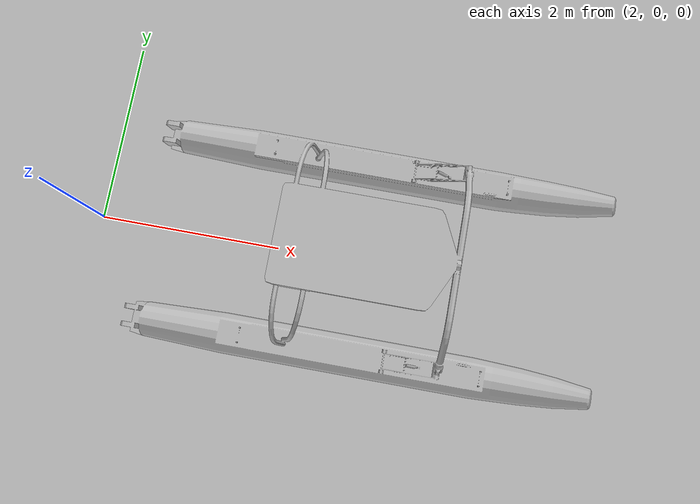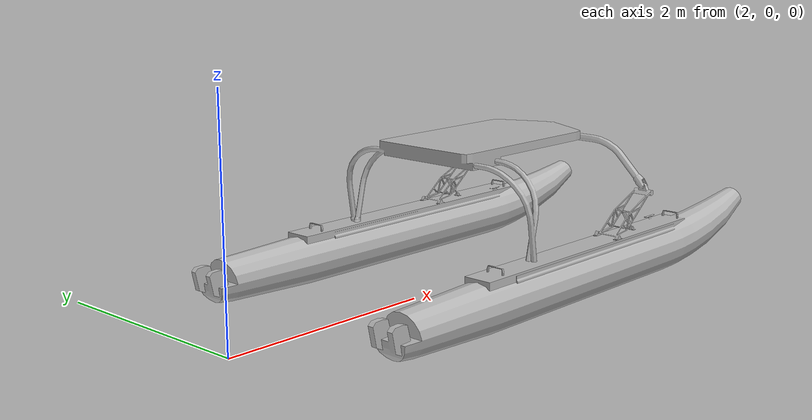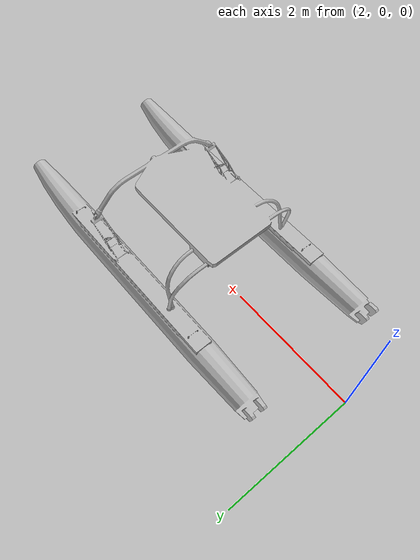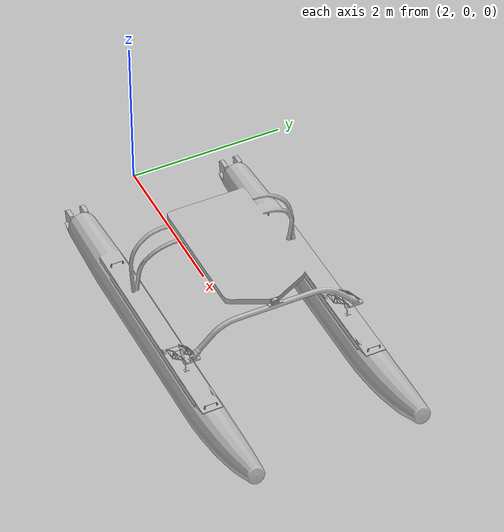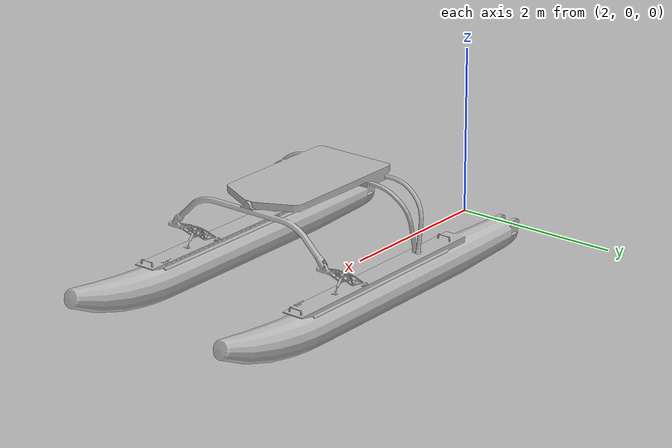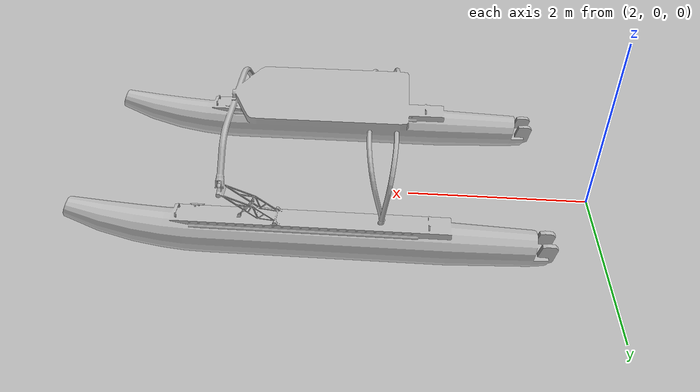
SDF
<?xml version="1.0" ?>
<sdf version="1.6">
  <world name="perf_waves">

    <!-- real_time_factor 0: run as fast as possible, no wall-clock throttle.
         Patched at runtime by perf_check.py via the speedup argument. -->
    <physics type="ode">
      <real_time_factor>0</real_time_factor>
      <real_time_update_rate>1000</real_time_update_rate>
    </physics>

    <plugin filename="gz-sim-physics-system"
            name="gz::sim::systems::Physics">
    </plugin>
    <plugin filename="gz-sim-scene-broadcaster-system"
            name="gz::sim::systems::SceneBroadcaster">
    </plugin>
    <plugin filename="gz-sim-user-commands-system"
            name="gz::sim::systems::UserCommands">
    </plugin>
    <plugin filename="gz-sim-wind-effects-system"
            name="gz::sim::systems::WindEffects">
      <force_approximation_scaling_factor>1.0</force_approximation_scaling_factor>
      <horizontal>
        <magnitude>
          <time_for_rise>10</time_for_rise>
          <sin>
            <amplitude_percent>0.05</amplitude_percent>
            <period>60</period>
          </sin>
          <noise type="gaussian">
            <mean>0</mean>
            <stddev>0.0002</stddev>
          </noise>
        </magnitude>
        <direction>
          <time_for_rise>30</time_for_rise>
          <sin>
            <amplitude>5</amplitude>
            <period>20</period>
          </sin>
          <noise type="gaussian">
            <mean>0</mean>
            <stddev>0.03</stddev>
          </noise>
        </direction>
      </horizontal>
      <vertical>
        <noise type="gaussian">
          <mean>0</mean>
          <stddev>0.03</stddev>
        </noise>
      </vertical>
    </plugin>

    <scene>
      <ambient>1.0 1.0 1.0</ambient>
      <background>0.8 0.8 0.8</background>
      <sky></sky>
    </scene>

    <light type="directional" name="sun">
      <cast_shadows>true</cast_shadows>
      <pose>0 0 10 0 0 0</pose>
      <diffuse>0.8 0.8 0.8 1</diffuse>
      <specular>0.6 0.6 0.6 1</specular>
      <direction>-0.5 0.1 -0.9</direction>
    </light>

    <wind>
      <linear_velocity>0 2 0</linear_velocity>
    </wind>

    <!-- Wave surface from gz_waves_models -->
    <include>
      <pose>0 0 0 0 0 0</pose>
      <uri>model://waves</uri>
    </include>

    <model name="perf_vessel">
      <pose>5 0 0 0 0 0</pose>
      <enable_wind>true</enable_wind>

      <link name="base_link">
        <visual name="visual">
          <geometry>
            <mesh>
              <uri>model://wam-v/meshes/WAM-V-Base.dae</uri>
            </mesh>
          </geometry>
        </visual>
        <collision name="collision">
          <geometry>
            <mesh>
              <uri>model://wam-v/meshes/wam-v-base_collision_406.stl</uri>
            </mesh>
          </geometry>
        </collision>
        <inertial>
          <pose>0 0 0 0 0 0</pose>
          <mass>180</mass>
          <inertia>
            <ixx>120</ixx>
            <ixy>0</ixy>
            <ixz>0</ixz>
            <iyy>393</iyy>
            <iyz>0</iyz>
            <izz>446</izz>
          </inertia>
        </inertial>
      </link>

      <plugin
          filename="gz-waves1-hydrodynamics-system"
          name="gz::sim::systems::Hydrodynamics">
        <enable>perf_vessel::base_link</enable>
        <hydrodynamics>
          <damping_on>1</damping_on>
          <viscous_drag_on>1</viscous_drag_on>
          <pressure_drag_on>1</pressure_drag_on>
          <cDampU1>1.0E-6</cDampU1>  <cDampU2>1.0E-6</cDampU2>
          <cDampV1>1.0E-3</cDampV1>  <cDampV2>1.0E-3</cDampV2>
          <cDampW1>1.0E-3</cDampW1>  <cDampW2>1.0E-3</cDampW2>
          <cDampP1>5.0E-3</cDampP1>  <cDampP2>5.0E-3</cDampP2>
          <cDampQ1>5.0E-3</cDampQ1>  <cDampQ2>5.0E-3</cDampQ2>
          <cDampN1>5.0E-4</cDampN1>  <cDampN2>5.0E-4</cDampN2>
          <cPDrag1>1.0E+2</cPDrag1>
          <cPDrag2>1.0E+2</cPDrag2>
          <fPDrag>0.4</fPDrag>
          <cSDrag1>1.0E+2</cSDrag1>
          <cSDrag2>1.0E+2</cSDrag2>
          <fSDrag>0.4</fSDrag>
          <vRDrag>1.0</vRDrag>
        </hydrodynamics>
      </plugin>

    </model>

  </world>
</sdf>

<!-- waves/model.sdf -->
<sdf version="1.6">
  <model name="waves">
    <static>true</static>
    <link name="link">
      <visual name= "wave_visual">
        <geometry>
          <mesh>
            <uri>meshes/mesh.dae</uri>
          </mesh>
        </geometry>
        <plugin
            filename="libWaveVisual.so"
            name="ignition::gazebo::systems::WaveVisual">
          <shader>
            <vertex>materials/programs/GerstnerWaves_vs_330.glsl</vertex>
            <fragment>materials/programs/GerstnerWaves_fs_330.glsl</fragment>
          </shader>
          <wavefield>
            <size>1000 1000</size>
            <cell_count>50 50</cell_count>
            <wave>
              <model>PMS</model>
              <period>5</period>
              <number>3</number>
              <scale>5.1</scale>
              <gain>0.3</gain>
              <direction>1 0</direction>
              <angle>0.4</angle>
              <tau>2.0</tau>
              <amplitude>0.0</amplitude>
              <steepness>0.0</steepness>
            </wave>
          </wavefield>
        </plugin>
        <visibility_flags>8</visibility_flags>
      </visual>
    </link>
  </model>
</sdf>
